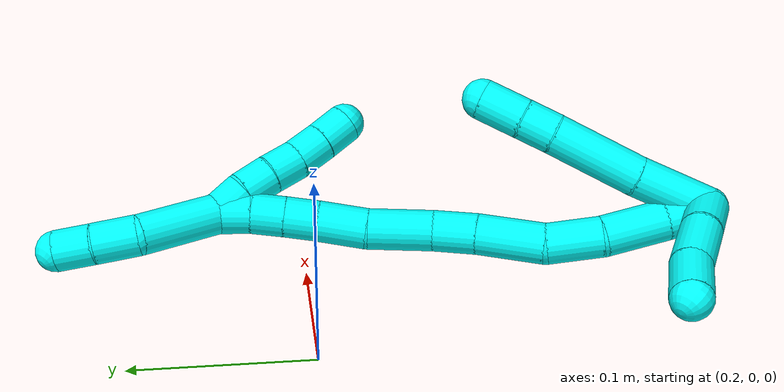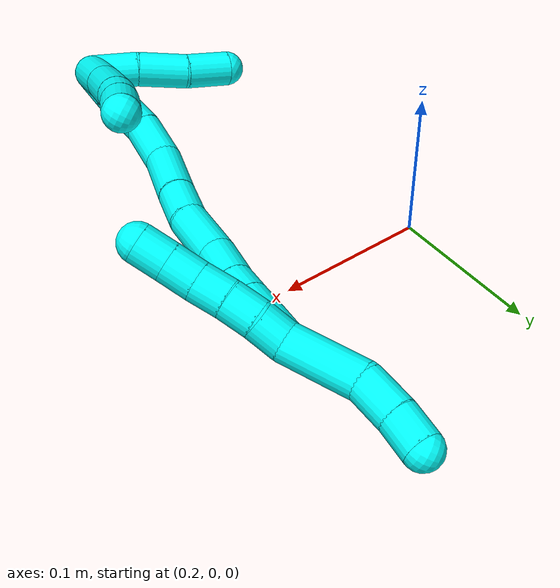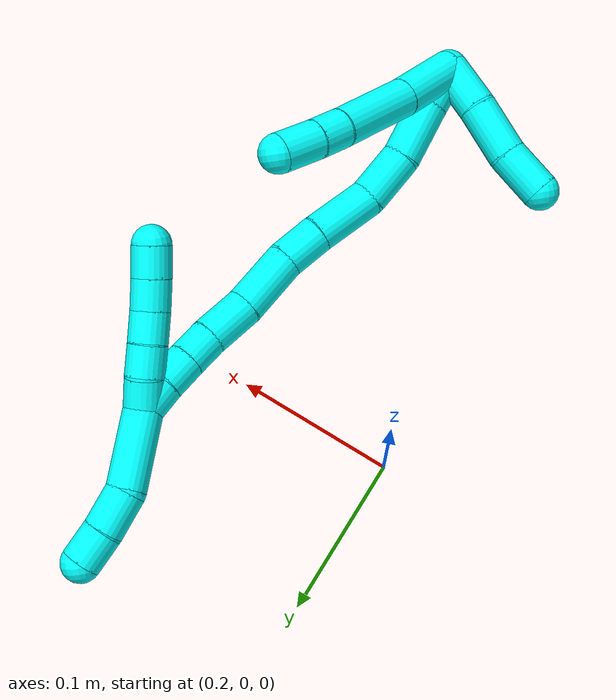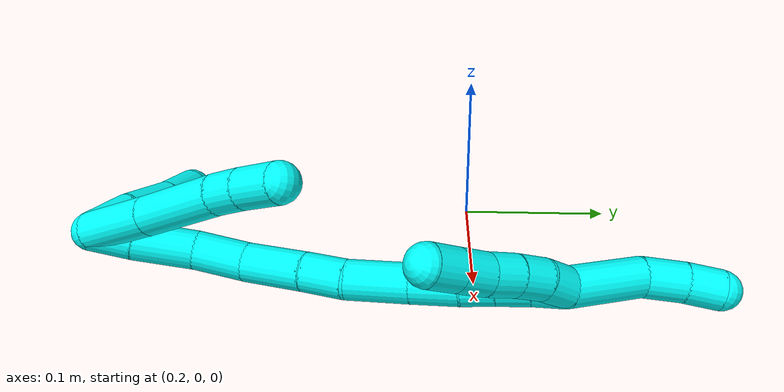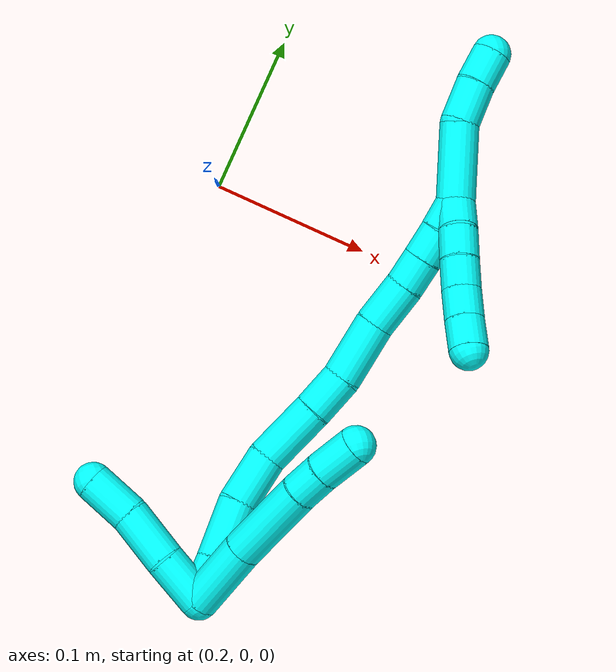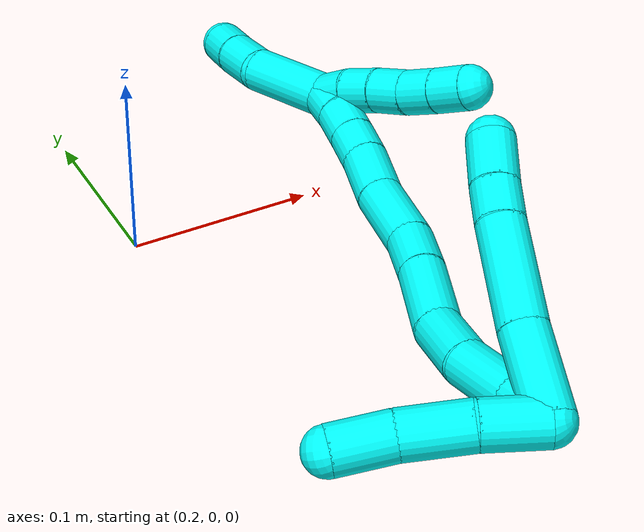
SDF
<sdf version="1.7">
 <world name="default">
  <model name="3">
   <static>0</static>
   <link name="3">
    <collision name="collision-cylinder-e_1_2_8">
     <pose>-0.018715 0.01225 -0.006699 -2.07122 -0.929846 1.40433</pose>
     <geometry><cylinder><radius>0.0125</radius><length>0.046699</length></cylinder></geometry>
     <surface>
      <friction><ode><mu>1.16</mu><mu2>1.16</mu2><slip1>0</slip1><slip2>0</slip2></ode></friction>
      <contact><ode><kp>1e+06</kp><kd>1</kd><max_vel>0</max_vel><min_depth>0.001</min_depth></ode></contact>
     </surface>
    </collision>
    <visual name="visual-cylinder-e_1_2_8">
     <pose>-0.018715 0.01225 -0.006699 -2.07122 -0.929846 1.40433</pose>
     <geometry><cylinder><radius>0.0125</radius><length>0.046699</length></cylinder></geometry>
     <material><ambient>0.003922 1 0.996078 1</ambient></material>
    </visual>
    <collision name="collision-cylinder-e_2_8_9">
     <pose>-0.060043 0.039431 -0.019468 -1.9569 -0.951533 1.30687</pose>
     <geometry><cylinder><radius>0.0125</radius><length>0.055537</length></cylinder></geometry>
     <surface>
      <friction><ode><mu>1.16</mu><mu2>1.16</mu2><slip1>0</slip1><slip2>0</slip2></ode></friction>
      <contact><ode><kp>1e+06</kp><kd>1</kd><max_vel>0</max_vel><min_depth>0.001</min_depth></ode></contact>
     </surface>
    </collision>
    <visual name="visual-cylinder-e_2_8_9">
     <pose>-0.060043 0.039431 -0.019468 -1.9569 -0.951533 1.30687</pose>
     <geometry><cylinder><radius>0.0125</radius><length>0.055537</length></cylinder></geometry>
     <material><ambient>0.003922 1 0.996078 1</ambient></material>
    </visual>
    <collision name="collision-cylinder-e_3_9_10">
     <pose>-0.090618 0.060544 -0.027555 -1.88638 -0.886053 1.15843</pose>
     <geometry><cylinder><radius>0.0125</radius><length>0.020561</length></cylinder></geometry>
     <surface>
      <friction><ode><mu>1.16</mu><mu2>1.16</mu2><slip1>0</slip1><slip2>0</slip2></ode></friction>
      <contact><ode><kp>1e+06</kp><kd>1</kd><max_vel>0</max_vel><min_depth>0.001</min_depth></ode></contact>
     </surface>
    </collision>
    <visual name="visual-cylinder-e_3_9_10">
     <pose>-0.090618 0.060544 -0.027555 -1.88638 -0.886053 1.15843</pose>
     <geometry><cylinder><radius>0.0125</radius><length>0.020561</length></cylinder></geometry>
     <material><ambient>0.003922 1 0.996078 1</ambient></material>
    </visual>
    <collision name="collision-cylinder-e_4_10_6">
     <pose>-0.108679 0.075571 -0.031758 -1.8129 -0.836704 1.03273</pose>
     <geometry><cylinder><radius>0.0125</radius><length>0.027203</length></cylinder></geometry>
     <surface>
      <friction><ode><mu>1.16</mu><mu2>1.16</mu2><slip1>0</slip1><slip2>0</slip2></ode></friction>
      <contact><ode><kp>1e+06</kp><kd>1</kd><max_vel>0</max_vel><min_depth>0.001</min_depth></ode></contact>
     </surface>
    </collision>
    <visual name="visual-cylinder-e_4_10_6">
     <pose>-0.108679 0.075571 -0.031758 -1.8129 -0.836704 1.03273</pose>
     <geometry><cylinder><radius>0.0125</radius><length>0.027203</length></cylinder></geometry>
     <material><ambient>0.003922 1 0.996078 1</ambient></material>
    </visual>
    <collision name="collision-cylinder-e_1_2_11">
     <pose>-0.003432 -0.008141 -0.013756 2.60719 -0.211488 -0.73977</pose>
     <geometry><cylinder><radius>0.0125</radius><length>0.032698</length></cylinder></geometry>
     <surface>
      <friction><ode><mu>1.16</mu><mu2>1.16</mu2><slip1>0</slip1><slip2>0</slip2></ode></friction>
      <contact><ode><kp>1e+06</kp><kd>1</kd><max_vel>0</max_vel><min_depth>0.001</min_depth></ode></contact>
     </surface>
    </collision>
    <visual name="visual-cylinder-e_1_2_11">
     <pose>-0.003432 -0.008141 -0.013756 2.60719 -0.211488 -0.73977</pose>
     <geometry><cylinder><radius>0.0125</radius><length>0.032698</length></cylinder></geometry>
     <material><ambient>0.003922 1 0.996078 1</ambient></material>
    </visual>
    <collision name="collision-cylinder-e_2_11_12">
     <pose>-0.008839 -0.024012 -0.043626 2.69433 -0.110048 -0.475206</pose>
     <geometry><cylinder><radius>0.0125</radius><length>0.035962</length></cylinder></geometry>
     <surface>
      <friction><ode><mu>1.16</mu><mu2>1.16</mu2><slip1>0</slip1><slip2>0</slip2></ode></friction>
      <contact><ode><kp>1e+06</kp><kd>1</kd><max_vel>0</max_vel><min_depth>0.001</min_depth></ode></contact>
     </surface>
    </collision>
    <visual name="visual-cylinder-e_2_11_12">
     <pose>-0.008839 -0.024012 -0.043626 2.69433 -0.110048 -0.475206</pose>
     <geometry><cylinder><radius>0.0125</radius><length>0.035962</length></cylinder></geometry>
     <material><ambient>0.003922 1 0.996078 1</ambient></material>
    </visual>
    <collision name="collision-cylinder-e_3_12_5">
     <pose>-0.011593 -0.040668 -0.072596 2.53472 -0.049766 -0.158641</pose>
     <geometry><cylinder><radius>0.0125</radius><length>0.03134</length></cylinder></geometry>
     <surface>
      <friction><ode><mu>1.16</mu><mu2>1.16</mu2><slip1>0</slip1><slip2>0</slip2></ode></friction>
      <contact><ode><kp>1e+06</kp><kd>1</kd><max_vel>0</max_vel><min_depth>0.001</min_depth></ode></contact>
     </surface>
    </collision>
    <visual name="visual-cylinder-e_3_12_5">
     <pose>-0.011593 -0.040668 -0.072596 2.53472 -0.049766 -0.158641</pose>
     <geometry><cylinder><radius>0.0125</radius><length>0.03134</length></cylinder></geometry>
     <material><ambient>0.003922 1 0.996078 1</ambient></material>
    </visual>
    <collision name="collision-cylinder-e_1_2_13">
     <pose>-0.004352 0.007399 -0.010384 -2.52248 -0.328948 0.957351</pose>
     <geometry><cylinder><radius>0.0125</radius><length>0.026946</length></cylinder></geometry>
     <surface>
      <friction><ode><mu>1.16</mu><mu2>1.16</mu2><slip1>0</slip1><slip2>0</slip2></ode></friction>
      <contact><ode><kp>1e+06</kp><kd>1</kd><max_vel>0</max_vel><min_depth>0.001</min_depth></ode></contact>
     </surface>
    </collision>
    <visual name="visual-cylinder-e_1_2_13">
     <pose>-0.004352 0.007399 -0.010384 -2.52248 -0.328948 0.957351</pose>
     <geometry><cylinder><radius>0.0125</radius><length>0.026946</length></cylinder></geometry>
     <material><ambient>0.003922 1 0.996078 1</ambient></material>
    </visual>
    <collision name="collision-cylinder-e_2_13_14">
     <pose>-0.015898 0.024674 -0.035946 -2.5648 -0.378126 1.14569</pose>
     <geometry><cylinder><radius>0.0125</radius><length>0.038969</length></cylinder></geometry>
     <surface>
      <friction><ode><mu>1.16</mu><mu2>1.16</mu2><slip1>0</slip1><slip2>0</slip2></ode></friction>
      <contact><ode><kp>1e+06</kp><kd>1</kd><max_vel>0</max_vel><min_depth>0.001</min_depth></ode></contact>
     </surface>
    </collision>
    <visual name="visual-cylinder-e_2_13_14">
     <pose>-0.015898 0.024674 -0.035946 -2.5648 -0.378126 1.14569</pose>
     <geometry><cylinder><radius>0.0125</radius><length>0.038969</length></cylinder></geometry>
     <material><ambient>0.003922 1 0.996078 1</ambient></material>
    </visual>
    <collision name="collision-cylinder-e_3_14_15">
     <pose>-0.029907 0.04575 -0.062007 -2.34177 -0.411492 0.917257</pose>
     <geometry><cylinder><radius>0.0125</radius><length>0.034079</length></cylinder></geometry>
     <surface>
      <friction><ode><mu>1.16</mu><mu2>1.16</mu2><slip1>0</slip1><slip2>0</slip2></ode></friction>
      <contact><ode><kp>1e+06</kp><kd>1</kd><max_vel>0</max_vel><min_depth>0.001</min_depth></ode></contact>
     </surface>
    </collision>
    <visual name="visual-cylinder-e_3_14_15">
     <pose>-0.029907 0.04575 -0.062007 -2.34177 -0.411492 0.917257</pose>
     <geometry><cylinder><radius>0.0125</radius><length>0.034079</length></cylinder></geometry>
     <material><ambient>0.003922 1 0.996078 1</ambient></material>
    </visual>
    <collision name="collision-cylinder-e_4_15_16">
     <pose>-0.0482 0.072053 -0.081306 -2.07922 -0.586091 0.948899</pose>
     <geometry><cylinder><radius>0.0125</radius><length>0.041505</length></cylinder></geometry>
     <surface>
      <friction><ode><mu>1.16</mu><mu2>1.16</mu2><slip1>0</slip1><slip2>0</slip2></ode></friction>
      <contact><ode><kp>1e+06</kp><kd>1</kd><max_vel>0</max_vel><min_depth>0.001</min_depth></ode></contact>
     </surface>
    </collision>
    <visual name="visual-cylinder-e_4_15_16">
     <pose>-0.0482 0.072053 -0.081306 -2.07922 -0.586091 0.948899</pose>
     <geometry><cylinder><radius>0.0125</radius><length>0.041505</length></cylinder></geometry>
     <material><ambient>0.003922 1 0.996078 1</ambient></material>
    </visual>
    <collision name="collision-cylinder-e_5_16_17">
     <pose>-0.066684 0.096919 -0.096016 -2.14337 -0.542675 0.943729</pose>
     <geometry><cylinder><radius>0.0125</radius><length>0.027131</length></cylinder></geometry>
     <surface>
      <friction><ode><mu>1.16</mu><mu2>1.16</mu2><slip1>0</slip1><slip2>0</slip2></ode></friction>
      <contact><ode><kp>1e+06</kp><kd>1</kd><max_vel>0</max_vel><min_depth>0.001</min_depth></ode></contact>
     </surface>
    </collision>
    <visual name="visual-cylinder-e_5_16_17">
     <pose>-0.066684 0.096919 -0.096016 -2.14337 -0.542675 0.943729</pose>
     <geometry><cylinder><radius>0.0125</radius><length>0.027131</length></cylinder></geometry>
     <material><ambient>0.003922 1 0.996078 1</ambient></material>
    </visual>
    <collision name="collision-cylinder-e_6_17_18">
     <pose>-0.084927 0.118439 -0.113904 -2.34926 -0.597567 1.26942</pose>
     <geometry><cylinder><radius>0.0125</radius><length>0.039945</length></cylinder></geometry>
     <surface>
      <friction><ode><mu>1.16</mu><mu2>1.16</mu2><slip1>0</slip1><slip2>0</slip2></ode></friction>
      <contact><ode><kp>1e+06</kp><kd>1</kd><max_vel>0</max_vel><min_depth>0.001</min_depth></ode></contact>
     </surface>
    </collision>
    <visual name="visual-cylinder-e_6_17_18">
     <pose>-0.084927 0.118439 -0.113904 -2.34926 -0.597567 1.26942</pose>
     <geometry><cylinder><radius>0.0125</radius><length>0.039945</length></cylinder></geometry>
     <material><ambient>0.003922 1 0.996078 1</ambient></material>
    </visual>
    <collision name="collision-cylinder-e_7_18_19">
     <pose>-0.105675 0.139905 -0.132444 -2.19173 -0.672649 1.19425</pose>
     <geometry><cylinder><radius>0.0125</radius><length>0.030527</length></cylinder></geometry>
     <surface>
      <friction><ode><mu>1.16</mu><mu2>1.16</mu2><slip1>0</slip1><slip2>0</slip2></ode></friction>
      <contact><ode><kp>1e+06</kp><kd>1</kd><max_vel>0</max_vel><min_depth>0.001</min_depth></ode></contact>
     </surface>
    </collision>
    <visual name="visual-cylinder-e_7_18_19">
     <pose>-0.105675 0.139905 -0.132444 -2.19173 -0.672649 1.19425</pose>
     <geometry><cylinder><radius>0.0125</radius><length>0.030527</length></cylinder></geometry>
     <material><ambient>0.003922 1 0.996078 1</ambient></material>
    </visual>
    <collision name="collision-cylinder-e_8_19_20">
     <pose>-0.121689 0.155463 -0.144639 -2.30235 -0.691431 1.35843</pose>
     <geometry><cylinder><radius>0.0125</radius><length>0.020401</length></cylinder></geometry>
     <surface>
      <friction><ode><mu>1.16</mu><mu2>1.16</mu2><slip1>0</slip1><slip2>0</slip2></ode></friction>
      <contact><ode><kp>1e+06</kp><kd>1</kd><max_vel>0</max_vel><min_depth>0.001</min_depth></ode></contact>
     </surface>
    </collision>
    <visual name="visual-cylinder-e_8_19_20">
     <pose>-0.121689 0.155463 -0.144639 -2.30235 -0.691431 1.35843</pose>
     <geometry><cylinder><radius>0.0125</radius><length>0.020401</length></cylinder></geometry>
     <material><ambient>0.003922 1 0.996078 1</ambient></material>
    </visual>
    <collision name="collision-cylinder-e_9_20_21">
     <pose>-0.134575 0.167123 -0.155323 -2.32257 -0.675926 1.36124</pose>
     <geometry><cylinder><radius>0.0125</radius><length>0.020401</length></cylinder></geometry>
     <surface>
      <friction><ode><mu>1.16</mu><mu2>1.16</mu2><slip1>0</slip1><slip2>0</slip2></ode></friction>
      <contact><ode><kp>1e+06</kp><kd>1</kd><max_vel>0</max_vel><min_depth>0.001</min_depth></ode></contact>
     </surface>
    </collision>
    <visual name="visual-cylinder-e_9_20_21">
     <pose>-0.134575 0.167123 -0.155323 -2.32257 -0.675926 1.36124</pose>
     <geometry><cylinder><radius>0.0125</radius><length>0.020401</length></cylinder></geometry>
     <material><ambient>0.003922 1 0.996078 1</ambient></material>
    </visual>
    <collision name="collision-cylinder-e_10_21_1">
     <pose>-0.146441 0.178692 -0.166902 -2.38884 -0.577332 1.28877</pose>
     <geometry><cylinder><radius>0.0125</radius><length>0.020096</length></cylinder></geometry>
     <surface>
      <friction><ode><mu>1.16</mu><mu2>1.16</mu2><slip1>0</slip1><slip2>0</slip2></ode></friction>
      <contact><ode><kp>1e+06</kp><kd>1</kd><max_vel>0</max_vel><min_depth>0.001</min_depth></ode></contact>
     </surface>
    </collision>
    <visual name="visual-cylinder-e_10_21_1">
     <pose>-0.146441 0.178692 -0.166902 -2.38884 -0.577332 1.28877</pose>
     <geometry><cylinder><radius>0.0125</radius><length>0.020096</length></cylinder></geometry>
     <material><ambient>0.003922 1 0.996078 1</ambient></material>
    </visual>
    <collision name="collision-cylinder-e_1_1_22">
     <pose>-0.151942 0.182175 -0.163309 0.229347 -0.001693 -0.000195</pose>
     <geometry><cylinder><radius>0.0125</radius><length>0.02</length></cylinder></geometry>
     <surface>
      <friction><ode><mu>1.16</mu><mu2>1.16</mu2><slip1>0</slip1><slip2>0</slip2></ode></friction>
      <contact><ode><kp>1e+06</kp><kd>1</kd><max_vel>0</max_vel><min_depth>0.001</min_depth></ode></contact>
     </surface>
    </collision>
    <visual name="visual-cylinder-e_1_1_22">
     <pose>-0.151942 0.182175 -0.163309 0.229347 -0.001693 -0.000195</pose>
     <geometry><cylinder><radius>0.0125</radius><length>0.02</length></cylinder></geometry>
     <material><ambient>0.003922 1 0.996078 1</ambient></material>
    </visual>
    <collision name="collision-cylinder-e_2_22_23">
     <pose>-0.150336 0.177756 -0.143939 0.219205 0.162942 0.01797</pose>
     <geometry><cylinder><radius>0.0125</radius><length>0.02</length></cylinder></geometry>
     <surface>
      <friction><ode><mu>1.16</mu><mu2>1.16</mu2><slip1>0</slip1><slip2>0</slip2></ode></friction>
      <contact><ode><kp>1e+06</kp><kd>1</kd><max_vel>0</max_vel><min_depth>0.001</min_depth></ode></contact>
     </surface>
    </collision>
    <visual name="visual-cylinder-e_2_22_23">
     <pose>-0.150336 0.177756 -0.143939 0.219205 0.162942 0.01797</pose>
     <geometry><cylinder><radius>0.0125</radius><length>0.02</length></cylinder></geometry>
     <material><ambient>0.003922 1 0.996078 1</ambient></material>
    </visual>
    <collision name="collision-cylinder-e_3_23_24">
     <pose>-0.146427 0.173893 -0.124725 0.177309 0.230782 0.020604</pose>
     <geometry><cylinder><radius>0.0125</radius><length>0.02</length></cylinder></geometry>
     <surface>
      <friction><ode><mu>1.16</mu><mu2>1.16</mu2><slip1>0</slip1><slip2>0</slip2></ode></friction>
      <contact><ode><kp>1e+06</kp><kd>1</kd><max_vel>0</max_vel><min_depth>0.001</min_depth></ode></contact>
     </surface>
    </collision>
    <visual name="visual-cylinder-e_3_23_24">
     <pose>-0.146427 0.173893 -0.124725 0.177309 0.230782 0.020604</pose>
     <geometry><cylinder><radius>0.0125</radius><length>0.02</length></cylinder></geometry>
     <material><ambient>0.003922 1 0.996078 1</ambient></material>
    </visual>
    <collision name="collision-cylinder-e_4_24_25">
     <pose>-0.142968 0.1704 -0.105372 0.179808 0.117413 0.010597</pose>
     <geometry><cylinder><radius>0.0125</radius><length>0.02</length></cylinder></geometry>
     <surface>
      <friction><ode><mu>1.16</mu><mu2>1.16</mu2><slip1>0</slip1><slip2>0</slip2></ode></friction>
      <contact><ode><kp>1e+06</kp><kd>1</kd><max_vel>0</max_vel><min_depth>0.001</min_depth></ode></contact>
     </surface>
    </collision>
    <visual name="visual-cylinder-e_4_24_25">
     <pose>-0.142968 0.1704 -0.105372 0.179808 0.117413 0.010597</pose>
     <geometry><cylinder><radius>0.0125</radius><length>0.02</length></cylinder></geometry>
     <material><ambient>0.003922 1 0.996078 1</ambient></material>
    </visual>
    <collision name="collision-cylinder-e_5_25_4">
     <pose>-0.140917 0.167108 -0.085756 0.152769 0.088095 0.006747</pose>
     <geometry><cylinder><radius>0.0125</radius><length>0.02</length></cylinder></geometry>
     <surface>
      <friction><ode><mu>1.16</mu><mu2>1.16</mu2><slip1>0</slip1><slip2>0</slip2></ode></friction>
      <contact><ode><kp>1e+06</kp><kd>1</kd><max_vel>0</max_vel><min_depth>0.001</min_depth></ode></contact>
     </surface>
    </collision>
    <visual name="visual-cylinder-e_5_25_4">
     <pose>-0.140917 0.167108 -0.085756 0.152769 0.088095 0.006747</pose>
     <geometry><cylinder><radius>0.0125</radius><length>0.02</length></cylinder></geometry>
     <material><ambient>0.003922 1 0.996078 1</ambient></material>
    </visual>
    <collision name="collision-cylinder-e_1_1_26">
     <pose>-0.16337 0.189394 -0.195006 -2.92008 -0.470398 2.27257</pose>
     <geometry><cylinder><radius>0.0125</radius><length>0.050504</length></cylinder></geometry>
     <surface>
      <friction><ode><mu>1.16</mu><mu2>1.16</mu2><slip1>0</slip1><slip2>0</slip2></ode></friction>
      <contact><ode><kp>1e+06</kp><kd>1</kd><max_vel>0</max_vel><min_depth>0.001</min_depth></ode></contact>
     </surface>
    </collision>
    <visual name="visual-cylinder-e_1_1_26">
     <pose>-0.16337 0.189394 -0.195006 -2.92008 -0.470398 2.27257</pose>
     <geometry><cylinder><radius>0.0125</radius><length>0.050504</length></cylinder></geometry>
     <material><ambient>0.003922 1 0.996078 1</ambient></material>
    </visual>
    <collision name="collision-cylinder-e_2_26_27">
     <pose>-0.180437 0.201311 -0.227068 -2.53755 -0.429501 1.22157</pose>
     <geometry><cylinder><radius>0.0125</radius><length>0.027002</length></cylinder></geometry>
     <surface>
      <friction><ode><mu>1.16</mu><mu2>1.16</mu2><slip1>0</slip1><slip2>0</slip2></ode></friction>
      <contact><ode><kp>1e+06</kp><kd>1</kd><max_vel>0</max_vel><min_depth>0.001</min_depth></ode></contact>
     </surface>
    </collision>
    <visual name="visual-cylinder-e_2_26_27">
     <pose>-0.180437 0.201311 -0.227068 -2.53755 -0.429501 1.22157</pose>
     <geometry><cylinder><radius>0.0125</radius><length>0.027002</length></cylinder></geometry>
     <material><ambient>0.003922 1 0.996078 1</ambient></material>
    </visual>
    <collision name="collision-cylinder-e_3_27_3">
     <pose>-0.190363 0.21509 -0.245021 -2.42719 -0.392659 0.979271</pose>
     <geometry><cylinder><radius>0.0125</radius><length>0.022494</length></cylinder></geometry>
     <surface>
      <friction><ode><mu>1.16</mu><mu2>1.16</mu2><slip1>0</slip1><slip2>0</slip2></ode></friction>
      <contact><ode><kp>1e+06</kp><kd>1</kd><max_vel>0</max_vel><min_depth>0.001</min_depth></ode></contact>
     </surface>
    </collision>
    <visual name="visual-cylinder-e_3_27_3">
     <pose>-0.190363 0.21509 -0.245021 -2.42719 -0.392659 0.979271</pose>
     <geometry><cylinder><radius>0.0125</radius><length>0.022494</length></cylinder></geometry>
     <material><ambient>0.003922 1 0.996078 1</ambient></material>
    </visual>
    <collision name="collision-sphere-3">
     <pose>-0.194667 0.221898 -0.252871 0 -0 0</pose>
     <geometry><sphere><radius>0.0125</radius></sphere></geometry>
     <surface>
      <friction><ode><mu>1.16</mu><mu2>1.16</mu2><slip1>0</slip1><slip2>0</slip2></ode></friction>
      <contact><ode><kp>1e+06</kp><kd>1</kd><max_vel>0</max_vel><min_depth>0.001</min_depth></ode></contact>
     </surface>
    </collision>
    <visual name="visual-sphere-3">
     <pose>-0.194667 0.221898 -0.252871 0 -0 0</pose>
     <geometry><sphere><radius>0.0125</radius></sphere></geometry>
     <material><ambient>0.003922 1 0.996078 1</ambient></material>
    </visual>
    <collision name="collision-sphere-27">
     <pose>-0.18606 0.208283 -0.237171 0 -0 0</pose>
     <geometry><sphere><radius>0.0125</radius></sphere></geometry>
     <surface>
      <friction><ode><mu>1.16</mu><mu2>1.16</mu2><slip1>0</slip1><slip2>0</slip2></ode></friction>
      <contact><ode><kp>1e+06</kp><kd>1</kd><max_vel>0</max_vel><min_depth>0.001</min_depth></ode></contact>
     </surface>
    </collision>
    <visual name="visual-sphere-27">
     <pose>-0.18606 0.208283 -0.237171 0 -0 0</pose>
     <geometry><sphere><radius>0.0125</radius></sphere></geometry>
     <material><ambient>0.003922 1 0.996078 1</ambient></material>
    </visual>
    <collision name="collision-sphere-26">
     <pose>-0.174815 0.194339 -0.216966 0 -0 0</pose>
     <geometry><sphere><radius>0.0125</radius></sphere></geometry>
     <surface>
      <friction><ode><mu>1.16</mu><mu2>1.16</mu2><slip1>0</slip1><slip2>0</slip2></ode></friction>
      <contact><ode><kp>1e+06</kp><kd>1</kd><max_vel>0</max_vel><min_depth>0.001</min_depth></ode></contact>
     </surface>
    </collision>
    <visual name="visual-sphere-26">
     <pose>-0.174815 0.194339 -0.216966 0 -0 0</pose>
     <geometry><sphere><radius>0.0125</radius></sphere></geometry>
     <material><ambient>0.003922 1 0.996078 1</ambient></material>
    </visual>
    <collision name="collision-sphere-4">
     <pose>-0.140037 0.165592 -0.075911 0 -0 0</pose>
     <geometry><sphere><radius>0.0125</radius></sphere></geometry>
     <surface>
      <friction><ode><mu>1.16</mu><mu2>1.16</mu2><slip1>0</slip1><slip2>0</slip2></ode></friction>
      <contact><ode><kp>1e+06</kp><kd>1</kd><max_vel>0</max_vel><min_depth>0.001</min_depth></ode></contact>
     </surface>
    </collision>
    <visual name="visual-sphere-4">
     <pose>-0.140037 0.165592 -0.075911 0 -0 0</pose>
     <geometry><sphere><radius>0.0125</radius></sphere></geometry>
     <material><ambient>0.003922 1 0.996078 1</ambient></material>
    </visual>
    <collision name="collision-sphere-25">
     <pose>-0.141797 0.168624 -0.095601 0 -0 0</pose>
     <geometry><sphere><radius>0.0125</radius></sphere></geometry>
     <surface>
      <friction><ode><mu>1.16</mu><mu2>1.16</mu2><slip1>0</slip1><slip2>0</slip2></ode></friction>
      <contact><ode><kp>1e+06</kp><kd>1</kd><max_vel>0</max_vel><min_depth>0.001</min_depth></ode></contact>
     </surface>
    </collision>
    <visual name="visual-sphere-25">
     <pose>-0.141797 0.168624 -0.095601 0 -0 0</pose>
     <geometry><sphere><radius>0.0125</radius></sphere></geometry>
     <material><ambient>0.003922 1 0.996078 1</ambient></material>
    </visual>
    <collision name="collision-sphere-24">
     <pose>-0.144139 0.172176 -0.115143 0 -0 0</pose>
     <geometry><sphere><radius>0.0125</radius></sphere></geometry>
     <surface>
      <friction><ode><mu>1.16</mu><mu2>1.16</mu2><slip1>0</slip1><slip2>0</slip2></ode></friction>
      <contact><ode><kp>1e+06</kp><kd>1</kd><max_vel>0</max_vel><min_depth>0.001</min_depth></ode></contact>
     </surface>
    </collision>
    <visual name="visual-sphere-24">
     <pose>-0.144139 0.172176 -0.115143 0 -0 0</pose>
     <geometry><sphere><radius>0.0125</radius></sphere></geometry>
     <material><ambient>0.003922 1 0.996078 1</ambient></material>
    </visual>
    <collision name="collision-sphere-23">
     <pose>-0.148714 0.17561 -0.134308 0 -0 0</pose>
     <geometry><sphere><radius>0.0125</radius></sphere></geometry>
     <surface>
      <friction><ode><mu>1.16</mu><mu2>1.16</mu2><slip1>0</slip1><slip2>0</slip2></ode></friction>
      <contact><ode><kp>1e+06</kp><kd>1</kd><max_vel>0</max_vel><min_depth>0.001</min_depth></ode></contact>
     </surface>
    </collision>
    <visual name="visual-sphere-23">
     <pose>-0.148714 0.17561 -0.134308 0 -0 0</pose>
     <geometry><sphere><radius>0.0125</radius></sphere></geometry>
     <material><ambient>0.003922 1 0.996078 1</ambient></material>
    </visual>
    <collision name="collision-sphere-22">
     <pose>-0.151959 0.179901 -0.15357 0 -0 0</pose>
     <geometry><sphere><radius>0.0125</radius></sphere></geometry>
     <surface>
      <friction><ode><mu>1.16</mu><mu2>1.16</mu2><slip1>0</slip1><slip2>0</slip2></ode></friction>
      <contact><ode><kp>1e+06</kp><kd>1</kd><max_vel>0</max_vel><min_depth>0.001</min_depth></ode></contact>
     </surface>
    </collision>
    <visual name="visual-sphere-22">
     <pose>-0.151959 0.179901 -0.15357 0 -0 0</pose>
     <geometry><sphere><radius>0.0125</radius></sphere></geometry>
     <material><ambient>0.003922 1 0.996078 1</ambient></material>
    </visual>
    <collision name="collision-sphere-1">
     <pose>-0.151925 0.184448 -0.173047 0 -0 0</pose>
     <geometry><sphere><radius>0.0125</radius></sphere></geometry>
     <surface>
      <friction><ode><mu>1.16</mu><mu2>1.16</mu2><slip1>0</slip1><slip2>0</slip2></ode></friction>
      <contact><ode><kp>1e+06</kp><kd>1</kd><max_vel>0</max_vel><min_depth>0.001</min_depth></ode></contact>
     </surface>
    </collision>
    <visual name="visual-sphere-1">
     <pose>-0.151925 0.184448 -0.173047 0 -0 0</pose>
     <geometry><sphere><radius>0.0125</radius></sphere></geometry>
     <material><ambient>0.003922 1 0.996078 1</ambient></material>
    </visual>
    <collision name="collision-sphere-21">
     <pose>-0.140957 0.172936 -0.160758 0 -0 0</pose>
     <geometry><sphere><radius>0.0125</radius></sphere></geometry>
     <surface>
      <friction><ode><mu>1.16</mu><mu2>1.16</mu2><slip1>0</slip1><slip2>0</slip2></ode></friction>
      <contact><ode><kp>1e+06</kp><kd>1</kd><max_vel>0</max_vel><min_depth>0.001</min_depth></ode></contact>
     </surface>
    </collision>
    <visual name="visual-sphere-21">
     <pose>-0.140957 0.172936 -0.160758 0 -0 0</pose>
     <geometry><sphere><radius>0.0125</radius></sphere></geometry>
     <material><ambient>0.003922 1 0.996078 1</ambient></material>
    </visual>
    <collision name="collision-sphere-11">
     <pose>-0.006864 -0.016283 -0.027512 0 -0 0</pose>
     <geometry><sphere><radius>0.0125</radius></sphere></geometry>
     <surface>
      <friction><ode><mu>1.16</mu><mu2>1.16</mu2><slip1>0</slip1><slip2>0</slip2></ode></friction>
      <contact><ode><kp>1e+06</kp><kd>1</kd><max_vel>0</max_vel><min_depth>0.001</min_depth></ode></contact>
     </surface>
    </collision>
    <visual name="visual-sphere-11">
     <pose>-0.006864 -0.016283 -0.027512 0 -0 0</pose>
     <geometry><sphere><radius>0.0125</radius></sphere></geometry>
     <material><ambient>0.003922 1 0.996078 1</ambient></material>
    </visual>
    <collision name="collision-sphere-6">
     <pose>-0.118777 0.084417 -0.033943 0 -0 0</pose>
     <geometry><sphere><radius>0.0125</radius></sphere></geometry>
     <surface>
      <friction><ode><mu>1.16</mu><mu2>1.16</mu2><slip1>0</slip1><slip2>0</slip2></ode></friction>
      <contact><ode><kp>1e+06</kp><kd>1</kd><max_vel>0</max_vel><min_depth>0.001</min_depth></ode></contact>
     </surface>
    </collision>
    <visual name="visual-sphere-6">
     <pose>-0.118777 0.084417 -0.033943 0 -0 0</pose>
     <geometry><sphere><radius>0.0125</radius></sphere></geometry>
     <material><ambient>0.003922 1 0.996078 1</ambient></material>
    </visual>
    <collision name="collision-sphere-10">
     <pose>-0.098581 0.066725 -0.029574 0 -0 0</pose>
     <geometry><sphere><radius>0.0125</radius></sphere></geometry>
     <surface>
      <friction><ode><mu>1.16</mu><mu2>1.16</mu2><slip1>0</slip1><slip2>0</slip2></ode></friction>
      <contact><ode><kp>1e+06</kp><kd>1</kd><max_vel>0</max_vel><min_depth>0.001</min_depth></ode></contact>
     </surface>
    </collision>
    <visual name="visual-sphere-10">
     <pose>-0.098581 0.066725 -0.029574 0 -0 0</pose>
     <geometry><sphere><radius>0.0125</radius></sphere></geometry>
     <material><ambient>0.003922 1 0.996078 1</ambient></material>
    </visual>
    <collision name="collision-sphere-9">
     <pose>-0.082655 0.054363 -0.025537 0 -0 0</pose>
     <geometry><sphere><radius>0.0125</radius></sphere></geometry>
     <surface>
      <friction><ode><mu>1.16</mu><mu2>1.16</mu2><slip1>0</slip1><slip2>0</slip2></ode></friction>
      <contact><ode><kp>1e+06</kp><kd>1</kd><max_vel>0</max_vel><min_depth>0.001</min_depth></ode></contact>
     </surface>
    </collision>
    <visual name="visual-sphere-9">
     <pose>-0.082655 0.054363 -0.025537 0 -0 0</pose>
     <geometry><sphere><radius>0.0125</radius></sphere></geometry>
     <material><ambient>0.003922 1 0.996078 1</ambient></material>
    </visual>
    <collision name="collision-sphere-2">
     <geometry><sphere><radius>0.0125</radius></sphere></geometry>
     <surface>
      <friction><ode><mu>1.16</mu><mu2>1.16</mu2><slip1>0</slip1><slip2>0</slip2></ode></friction>
      <contact><ode><kp>1e+06</kp><kd>1</kd><max_vel>0</max_vel><min_depth>0.001</min_depth></ode></contact>
     </surface>
    </collision>
    <visual name="visual-sphere-2">
     <geometry><sphere><radius>0.0125</radius></sphere></geometry>
     <material><ambient>0.003922 1 0.996078 1</ambient></material>
    </visual>
    <collision name="collision-sphere-19">
     <pose>-0.115185 0.149616 -0.13939 0 -0 0</pose>
     <geometry><sphere><radius>0.0125</radius></sphere></geometry>
     <surface>
      <friction><ode><mu>1.16</mu><mu2>1.16</mu2><slip1>0</slip1><slip2>0</slip2></ode></friction>
      <contact><ode><kp>1e+06</kp><kd>1</kd><max_vel>0</max_vel><min_depth>0.001</min_depth></ode></contact>
     </surface>
    </collision>
    <visual name="visual-sphere-19">
     <pose>-0.115185 0.149616 -0.13939 0 -0 0</pose>
     <geometry><sphere><radius>0.0125</radius></sphere></geometry>
     <material><ambient>0.003922 1 0.996078 1</ambient></material>
    </visual>
    <collision name="collision-sphere-8">
     <pose>-0.037431 0.0245 -0.013398 0 -0 0</pose>
     <geometry><sphere><radius>0.0125</radius></sphere></geometry>
     <surface>
      <friction><ode><mu>1.16</mu><mu2>1.16</mu2><slip1>0</slip1><slip2>0</slip2></ode></friction>
      <contact><ode><kp>1e+06</kp><kd>1</kd><max_vel>0</max_vel><min_depth>0.001</min_depth></ode></contact>
     </surface>
    </collision>
    <visual name="visual-sphere-8">
     <pose>-0.037431 0.0245 -0.013398 0 -0 0</pose>
     <geometry><sphere><radius>0.0125</radius></sphere></geometry>
     <material><ambient>0.003922 1 0.996078 1</ambient></material>
    </visual>
    <collision name="collision-sphere-12">
     <pose>-0.010813 -0.031742 -0.05974 0 -0 0</pose>
     <geometry><sphere><radius>0.0125</radius></sphere></geometry>
     <surface>
      <friction><ode><mu>1.16</mu><mu2>1.16</mu2><slip1>0</slip1><slip2>0</slip2></ode></friction>
      <contact><ode><kp>1e+06</kp><kd>1</kd><max_vel>0</max_vel><min_depth>0.001</min_depth></ode></contact>
     </surface>
    </collision>
    <visual name="visual-sphere-12">
     <pose>-0.010813 -0.031742 -0.05974 0 -0 0</pose>
     <geometry><sphere><radius>0.0125</radius></sphere></geometry>
     <material><ambient>0.003922 1 0.996078 1</ambient></material>
    </visual>
    <collision name="collision-sphere-5">
     <pose>-0.012372 -0.049594 -0.085452 0 -0 0</pose>
     <geometry><sphere><radius>0.0125</radius></sphere></geometry>
     <surface>
      <friction><ode><mu>1.16</mu><mu2>1.16</mu2><slip1>0</slip1><slip2>0</slip2></ode></friction>
      <contact><ode><kp>1e+06</kp><kd>1</kd><max_vel>0</max_vel><min_depth>0.001</min_depth></ode></contact>
     </surface>
    </collision>
    <visual name="visual-sphere-5">
     <pose>-0.012372 -0.049594 -0.085452 0 -0 0</pose>
     <geometry><sphere><radius>0.0125</radius></sphere></geometry>
     <material><ambient>0.003922 1 0.996078 1</ambient></material>
    </visual>
    <collision name="collision-sphere-13">
     <pose>-0.008705 0.014799 -0.020768 0 -0 0</pose>
     <geometry><sphere><radius>0.0125</radius></sphere></geometry>
     <surface>
      <friction><ode><mu>1.16</mu><mu2>1.16</mu2><slip1>0</slip1><slip2>0</slip2></ode></friction>
      <contact><ode><kp>1e+06</kp><kd>1</kd><max_vel>0</max_vel><min_depth>0.001</min_depth></ode></contact>
     </surface>
    </collision>
    <visual name="visual-sphere-13">
     <pose>-0.008705 0.014799 -0.020768 0 -0 0</pose>
     <geometry><sphere><radius>0.0125</radius></sphere></geometry>
     <material><ambient>0.003922 1 0.996078 1</ambient></material>
    </visual>
    <collision name="collision-sphere-14">
     <pose>-0.023091 0.034549 -0.051125 0 -0 0</pose>
     <geometry><sphere><radius>0.0125</radius></sphere></geometry>
     <surface>
      <friction><ode><mu>1.16</mu><mu2>1.16</mu2><slip1>0</slip1><slip2>0</slip2></ode></friction>
      <contact><ode><kp>1e+06</kp><kd>1</kd><max_vel>0</max_vel><min_depth>0.001</min_depth></ode></contact>
     </surface>
    </collision>
    <visual name="visual-sphere-14">
     <pose>-0.023091 0.034549 -0.051125 0 -0 0</pose>
     <geometry><sphere><radius>0.0125</radius></sphere></geometry>
     <material><ambient>0.003922 1 0.996078 1</ambient></material>
    </visual>
    <collision name="collision-sphere-15">
     <pose>-0.036722 0.056951 -0.07289 0 -0 0</pose>
     <geometry><sphere><radius>0.0125</radius></sphere></geometry>
     <surface>
      <friction><ode><mu>1.16</mu><mu2>1.16</mu2><slip1>0</slip1><slip2>0</slip2></ode></friction>
      <contact><ode><kp>1e+06</kp><kd>1</kd><max_vel>0</max_vel><min_depth>0.001</min_depth></ode></contact>
     </surface>
    </collision>
    <visual name="visual-sphere-15">
     <pose>-0.036722 0.056951 -0.07289 0 -0 0</pose>
     <geometry><sphere><radius>0.0125</radius></sphere></geometry>
     <material><ambient>0.003922 1 0.996078 1</ambient></material>
    </visual>
    <collision name="collision-sphere-16">
     <pose>-0.059679 0.087155 -0.089722 0 -0 0</pose>
     <geometry><sphere><radius>0.0125</radius></sphere></geometry>
     <surface>
      <friction><ode><mu>1.16</mu><mu2>1.16</mu2><slip1>0</slip1><slip2>0</slip2></ode></friction>
      <contact><ode><kp>1e+06</kp><kd>1</kd><max_vel>0</max_vel><min_depth>0.001</min_depth></ode></contact>
     </surface>
    </collision>
    <visual name="visual-sphere-16">
     <pose>-0.059679 0.087155 -0.089722 0 -0 0</pose>
     <geometry><sphere><radius>0.0125</radius></sphere></geometry>
     <material><ambient>0.003922 1 0.996078 1</ambient></material>
    </visual>
    <collision name="collision-sphere-17">
     <pose>-0.07369 0.106683 -0.10231 0 -0 0</pose>
     <geometry><sphere><radius>0.0125</radius></sphere></geometry>
     <surface>
      <friction><ode><mu>1.16</mu><mu2>1.16</mu2><slip1>0</slip1><slip2>0</slip2></ode></friction>
      <contact><ode><kp>1e+06</kp><kd>1</kd><max_vel>0</max_vel><min_depth>0.001</min_depth></ode></contact>
     </surface>
    </collision>
    <visual name="visual-sphere-17">
     <pose>-0.07369 0.106683 -0.10231 0 -0 0</pose>
     <geometry><sphere><radius>0.0125</radius></sphere></geometry>
     <material><ambient>0.003922 1 0.996078 1</ambient></material>
    </visual>
    <collision name="collision-sphere-18">
     <pose>-0.096164 0.130195 -0.125498 0 -0 0</pose>
     <geometry><sphere><radius>0.0125</radius></sphere></geometry>
     <surface>
      <friction><ode><mu>1.16</mu><mu2>1.16</mu2><slip1>0</slip1><slip2>0</slip2></ode></friction>
      <contact><ode><kp>1e+06</kp><kd>1</kd><max_vel>0</max_vel><min_depth>0.001</min_depth></ode></contact>
     </surface>
    </collision>
    <visual name="visual-sphere-18">
     <pose>-0.096164 0.130195 -0.125498 0 -0 0</pose>
     <geometry><sphere><radius>0.0125</radius></sphere></geometry>
     <material><ambient>0.003922 1 0.996078 1</ambient></material>
    </visual>
    <collision name="collision-sphere-20">
     <pose>-0.128194 0.161311 -0.149889 0 -0 0</pose>
     <geometry><sphere><radius>0.0125</radius></sphere></geometry>
     <surface>
      <friction><ode><mu>1.16</mu><mu2>1.16</mu2><slip1>0</slip1><slip2>0</slip2></ode></friction>
      <contact><ode><kp>1e+06</kp><kd>1</kd><max_vel>0</max_vel><min_depth>0.001</min_depth></ode></contact>
     </surface>
    </collision>
    <visual name="visual-sphere-20">
     <pose>-0.128194 0.161311 -0.149889 0 -0 0</pose>
     <geometry><sphere><radius>0.0125</radius></sphere></geometry>
     <material><ambient>0.003922 1 0.996078 1</ambient></material>
    </visual>
    <inertial>
     <pose>-0.082978 0.091251 -0.091882 0 -0 0</pose>
     <mass>0.75</mass>
     <inertia><ixx>6.2e-05</ixx><ixy>0</ixy><ixz>0</ixz><iyy>9.9e-05</iyy><iyz>0</iyz><izz>-7e-06</izz></inertia>
    </inertial>
   </link>
   <pose>0.296567 -0.241037 0.03193 -0.634 0.993944 -1.56261</pose>
  </model>
 </world>
</sdf>
